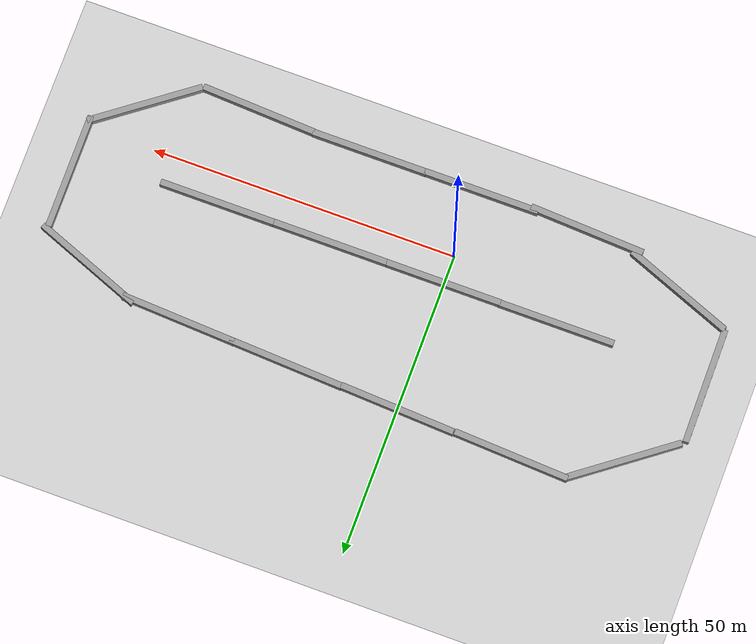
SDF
<sdf version="1.6">
 <world name="default">
  <light name="sun" type="directional">
   <pose>0 0 10 0 -0 0</pose>
   <diffuse>0.8 0.8 0.8 1</diffuse>
   <specular>0.1 0.1 0.1 1</specular>
   <attenuation>
    <range>1000</range>
    <constant>0.9</constant>
    <linear>0.01</linear>
    <quadratic>0.001</quadratic>
   </attenuation>
   <direction>-0.5 0.5 -1</direction>
  </light>
  <model name="ground_plane">
   <static>1</static>
   <link name="link">
    <collision name="collision">
     <geometry><plane><normal>0 0 1</normal><size>100 100</size></plane></geometry>
     <surface><friction><ode><mu>100</mu><mu2>50</mu2></ode></friction></surface>
    </collision>
    <visual name="visual">
     <cast_shadows>0</cast_shadows>
     <geometry><plane><normal>0 0 1</normal><size>100 100</size></plane></geometry>
     <material>
      <script><uri>file://media/materials/scripts/gazebo.material</uri><name>Gazebo/Grey</name></script>
     </material>
    </visual>
   </link>
  </model>
  <gravity>0 0 -9.8</gravity>
  <magnetic_field>6e-06 2.3e-05 -4.2e-05</magnetic_field>
  <atmosphere type="adiabatic"/>
  <physics name="default_physics" default="0" type="ode">
   <max_step_size>0.001</max_step_size>
   <real_time_factor>1</real_time_factor>
   <real_time_update_rate>1000</real_time_update_rate>
  </physics>
  <scene><ambient>0.4 0.4 0.4 1</ambient><background>0.7 0.7 0.7 1</background><shadows>1</shadows></scene>
  <spherical_coordinates>
   <surface_model>EARTH_WGS84</surface_model>
   <latitude_deg>0</latitude_deg>
   <longitude_deg>0</longitude_deg>
   <elevation>0</elevation>
   <heading_deg>0</heading_deg>
  </spherical_coordinates>
  <model name="Wall">
   <link name="link_0">
    <pose>-0 -4e-06 -3e-06 0 -0 0</pose>
    <inertial>
     <mass>51.3684</mass>
     <inertia><ixx>35.9696</ixx><ixy>0</ixy><ixz>0</ixz><iyy>1557.56</iyy><iyz>0</iyz><izz>1530.15</izz></inertia>
    </inertial>
    <visual name="visual">
     <geometry><box><size>18.8799 1 2.72079</size></box></geometry>
     <material>
      <lighting>1</lighting>
      <script><uri>file://media/materials/scripts/gazebo.material</uri><name>Gazebo/Grey</name></script>
      <ambient>0.3 0.3 0.3 1</ambient>
      <diffuse>0.7 0.7 0.7 1</diffuse>
      <specular>0.01 0.01 0.01 1</specular>
      <emissive>0 0 0 1</emissive>
     </material>
    </visual>
    <collision name="collision">
     <geometry><box><size>18.8799 1 2.72079</size></box></geometry>
     <surface>
      <friction>
       <ode><mu>1</mu><mu2>1</mu2><fdir1>0 0 0</fdir1><slip1>0</slip1><slip2>0</slip2></ode>
       <torsional>
        <coefficient>1</coefficient>
        <patch_radius>0</patch_radius>
        <surface_radius>0</surface_radius>
        <use_patch_radius>1</use_patch_radius>
        <ode><slip>0</slip></ode>
       </torsional>
      </friction>
      <bounce><restitution_coefficient>0</restitution_coefficient><threshold>1e+06</threshold></bounce>
      <contact>
       <collide_without_contact>0</collide_without_contact>
       <collide_without_contact_bitmask>1</collide_without_contact_bitmask>
       <collide_bitmask>1</collide_bitmask>
       <ode>
        <soft_cfm>0</soft_cfm>
        <soft_erp>0.2</soft_erp>
        <kp>1e+13</kp>
        <kd>1</kd>
        <max_vel>0.01</max_vel>
        <min_depth>0</min_depth>
       </ode>
       <bullet>
        <split_impulse>1</split_impulse>
        <split_impulse_penetration_threshold>-0.01</split_impulse_penetration_threshold>
        <soft_cfm>0</soft_cfm>
        <soft_erp>0.2</soft_erp>
        <kp>1e+13</kp>
        <kd>1</kd>
       </bullet>
      </contact>
     </surface>
    </collision>
   </link>
   <static>1</static>
   <pose>-0.522523 -11.1241 0 0 -0 0</pose>
  </model>
  <model name="Wall_clone">
   <link name="link_0">
    <pose>-0 -4e-06 -3e-06 0 -0 0</pose>
    <inertial>
     <mass>51.3684</mass>
     <inertia><ixx>35.9696</ixx><ixy>0</ixy><ixz>0</ixz><iyy>1557.56</iyy><iyz>0</iyz><izz>1530.15</izz></inertia>
    </inertial>
    <visual name="visual">
     <geometry><box><size>18.8799 1 2.72079</size></box></geometry>
     <material>
      <lighting>1</lighting>
      <script><uri>file://media/materials/scripts/gazebo.material</uri><name>Gazebo/Grey</name></script>
      <ambient>0.3 0.3 0.3 1</ambient>
      <diffuse>0.7 0.7 0.7 1</diffuse>
      <specular>0.01 0.01 0.01 1</specular>
      <emissive>0 0 0 1</emissive>
     </material>
    </visual>
    <collision name="collision">
     <geometry><box><size>18.8799 1 2.72079</size></box></geometry>
     <surface>
      <friction>
       <ode><mu>1</mu><mu2>1</mu2><fdir1>0 0 0</fdir1><slip1>0</slip1><slip2>0</slip2></ode>
       <torsional>
        <coefficient>1</coefficient>
        <patch_radius>0</patch_radius>
        <surface_radius>0</surface_radius>
        <use_patch_radius>1</use_patch_radius>
        <ode><slip>0</slip></ode>
       </torsional>
      </friction>
      <bounce><restitution_coefficient>0</restitution_coefficient><threshold>1e+06</threshold></bounce>
      <contact>
       <collide_without_contact>0</collide_without_contact>
       <collide_without_contact_bitmask>1</collide_without_contact_bitmask>
       <collide_bitmask>1</collide_bitmask>
       <ode>
        <soft_cfm>0</soft_cfm>
        <soft_erp>0.2</soft_erp>
        <kp>1e+13</kp>
        <kd>1</kd>
        <max_vel>0.01</max_vel>
        <min_depth>0</min_depth>
       </ode>
       <bullet>
        <split_impulse>1</split_impulse>
        <split_impulse_penetration_threshold>-0.01</split_impulse_penetration_threshold>
        <soft_cfm>0</soft_cfm>
        <soft_erp>0.2</soft_erp>
        <kp>1e+13</kp>
        <kd>1</kd>
       </bullet>
      </contact>
     </surface>
    </collision>
   </link>
   <static>1</static>
   <pose>0.031843 4.67742 0 0 -0 0</pose>
  </model>
  <model name="Wall_clone_0">
   <link name="link_0">
    <pose>-0 -4e-06 -3e-06 0 -0 0</pose>
    <inertial>
     <mass>51.3684</mass>
     <inertia><ixx>35.9696</ixx><ixy>0</ixy><ixz>0</ixz><iyy>1557.56</iyy><iyz>0</iyz><izz>1530.15</izz></inertia>
    </inertial>
    <visual name="visual">
     <geometry><box><size>18.8799 1 2.72079</size></box></geometry>
     <material>
      <lighting>1</lighting>
      <script><uri>file://media/materials/scripts/gazebo.material</uri><name>Gazebo/Grey</name></script>
      <ambient>0.3 0.3 0.3 1</ambient>
      <diffuse>0.7 0.7 0.7 1</diffuse>
      <specular>0.01 0.01 0.01 1</specular>
      <emissive>0 0 0 1</emissive>
     </material>
    </visual>
    <collision name="collision">
     <geometry><box><size>18.8799 1 2.72079</size></box></geometry>
     <surface>
      <friction>
       <ode><mu>1</mu><mu2>1</mu2><fdir1>0 0 0</fdir1><slip1>0</slip1><slip2>0</slip2></ode>
       <torsional>
        <coefficient>1</coefficient>
        <patch_radius>0</patch_radius>
        <surface_radius>0</surface_radius>
        <use_patch_radius>1</use_patch_radius>
        <ode><slip>0</slip></ode>
       </torsional>
      </friction>
      <bounce><restitution_coefficient>0</restitution_coefficient><threshold>1e+06</threshold></bounce>
      <contact>
       <collide_without_contact>0</collide_without_contact>
       <collide_without_contact_bitmask>1</collide_without_contact_bitmask>
       <collide_bitmask>1</collide_bitmask>
       <ode>
        <soft_cfm>0</soft_cfm>
        <soft_erp>0.2</soft_erp>
        <kp>1e+13</kp>
        <kd>1</kd>
        <max_vel>0.01</max_vel>
        <min_depth>0</min_depth>
       </ode>
       <bullet>
        <split_impulse>1</split_impulse>
        <split_impulse_penetration_threshold>-0.01</split_impulse_penetration_threshold>
        <soft_cfm>0</soft_cfm>
        <soft_erp>0.2</soft_erp>
        <kp>1e+13</kp>
        <kd>1</kd>
       </bullet>
      </contact>
     </surface>
    </collision>
   </link>
   <static>1</static>
   <pose>18.8535 4.66887 0 0 -0 0</pose>
  </model>
  <model name="Wall_clone_1">
   <link name="link_0">
    <pose>-0 -4e-06 -3e-06 0 -0 0</pose>
    <inertial>
     <mass>51.3684</mass>
     <inertia><ixx>35.9696</ixx><ixy>0</ixy><ixz>0</ixz><iyy>1557.56</iyy><iyz>0</iyz><izz>1530.15</izz></inertia>
    </inertial>
    <visual name="visual">
     <geometry><box><size>18.8799 1 2.72079</size></box></geometry>
     <material>
      <lighting>1</lighting>
      <script><uri>file://media/materials/scripts/gazebo.material</uri><name>Gazebo/Grey</name></script>
      <ambient>0.3 0.3 0.3 1</ambient>
      <diffuse>0.7 0.7 0.7 1</diffuse>
      <specular>0.01 0.01 0.01 1</specular>
      <emissive>0 0 0 1</emissive>
     </material>
    </visual>
    <collision name="collision">
     <geometry><box><size>18.8799 1 2.72079</size></box></geometry>
     <surface>
      <friction>
       <ode><mu>1</mu><mu2>1</mu2><fdir1>0 0 0</fdir1><slip1>0</slip1><slip2>0</slip2></ode>
       <torsional>
        <coefficient>1</coefficient>
        <patch_radius>0</patch_radius>
        <surface_radius>0</surface_radius>
        <use_patch_radius>1</use_patch_radius>
        <ode><slip>0</slip></ode>
       </torsional>
      </friction>
      <bounce><restitution_coefficient>0</restitution_coefficient><threshold>1e+06</threshold></bounce>
      <contact>
       <collide_without_contact>0</collide_without_contact>
       <collide_without_contact_bitmask>1</collide_without_contact_bitmask>
       <collide_bitmask>1</collide_bitmask>
       <ode>
        <soft_cfm>0</soft_cfm>
        <soft_erp>0.2</soft_erp>
        <kp>1e+13</kp>
        <kd>1</kd>
        <max_vel>0.01</max_vel>
        <min_depth>0</min_depth>
       </ode>
       <bullet>
        <split_impulse>1</split_impulse>
        <split_impulse_penetration_threshold>-0.01</split_impulse_penetration_threshold>
        <soft_cfm>0</soft_cfm>
        <soft_erp>0.2</soft_erp>
        <kp>1e+13</kp>
        <kd>1</kd>
       </bullet>
      </contact>
     </surface>
    </collision>
   </link>
   <static>1</static>
   <pose>18.0924 -11.0897 0 0 -0 0</pose>
  </model>
  <model name="Wall_clone_2">
   <link name="link_0">
    <pose>-0 -4e-06 -3e-06 0 -0 0</pose>
    <inertial>
     <mass>51.3684</mass>
     <inertia><ixx>35.9696</ixx><ixy>0</ixy><ixz>0</ixz><iyy>1557.56</iyy><iyz>0</iyz><izz>1530.15</izz></inertia>
    </inertial>
    <visual name="visual">
     <geometry><box><size>18.8799 1 2.72079</size></box></geometry>
     <material>
      <lighting>1</lighting>
      <script><uri>file://media/materials/scripts/gazebo.material</uri><name>Gazebo/Grey</name></script>
      <ambient>0.3 0.3 0.3 1</ambient>
      <diffuse>0.7 0.7 0.7 1</diffuse>
      <specular>0.01 0.01 0.01 1</specular>
      <emissive>0 0 0 1</emissive>
     </material>
    </visual>
    <collision name="collision">
     <geometry><box><size>18.8799 1 2.72079</size></box></geometry>
     <surface>
      <friction>
       <ode><mu>1</mu><mu2>1</mu2><fdir1>0 0 0</fdir1><slip1>0</slip1><slip2>0</slip2></ode>
       <torsional>
        <coefficient>1</coefficient>
        <patch_radius>0</patch_radius>
        <surface_radius>0</surface_radius>
        <use_patch_radius>1</use_patch_radius>
        <ode><slip>0</slip></ode>
       </torsional>
      </friction>
      <bounce><restitution_coefficient>0</restitution_coefficient><threshold>1e+06</threshold></bounce>
      <contact>
       <collide_without_contact>0</collide_without_contact>
       <collide_without_contact_bitmask>1</collide_without_contact_bitmask>
       <collide_bitmask>1</collide_bitmask>
       <ode>
        <soft_cfm>0</soft_cfm>
        <soft_erp>0.2</soft_erp>
        <kp>1e+13</kp>
        <kd>1</kd>
        <max_vel>0.01</max_vel>
        <min_depth>0</min_depth>
       </ode>
       <bullet>
        <split_impulse>1</split_impulse>
        <split_impulse_penetration_threshold>-0.01</split_impulse_penetration_threshold>
        <soft_cfm>0</soft_cfm>
        <soft_erp>0.2</soft_erp>
        <kp>1e+13</kp>
        <kd>1</kd>
       </bullet>
      </contact>
     </surface>
    </collision>
   </link>
   <static>1</static>
   <pose>37.6437 4.68164 0 0 -0 0</pose>
  </model>
  <model name="Wall_clone_3">
   <link name="link_0">
    <pose>-0 -4e-06 -3e-06 0 -0 0</pose>
    <inertial>
     <mass>51.3684</mass>
     <inertia><ixx>35.9696</ixx><ixy>0</ixy><ixz>0</ixz><iyy>1557.56</iyy><iyz>0</iyz><izz>1530.15</izz></inertia>
    </inertial>
    <visual name="visual">
     <geometry><box><size>18.8799 1 2.72079</size></box></geometry>
     <material>
      <lighting>1</lighting>
      <script><uri>file://media/materials/scripts/gazebo.material</uri><name>Gazebo/Grey</name></script>
      <ambient>0.3 0.3 0.3 1</ambient>
      <diffuse>0.7 0.7 0.7 1</diffuse>
      <specular>0.01 0.01 0.01 1</specular>
      <emissive>0 0 0 1</emissive>
     </material>
    </visual>
    <collision name="collision">
     <geometry><box><size>18.8799 1 2.72079</size></box></geometry>
     <surface>
      <friction>
       <ode><mu>1</mu><mu2>1</mu2><fdir1>0 0 0</fdir1><slip1>0</slip1><slip2>0</slip2></ode>
       <torsional>
        <coefficient>1</coefficient>
        <patch_radius>0</patch_radius>
        <surface_radius>0</surface_radius>
        <use_patch_radius>1</use_patch_radius>
        <ode><slip>0</slip></ode>
       </torsional>
      </friction>
      <bounce><restitution_coefficient>0</restitution_coefficient><threshold>1e+06</threshold></bounce>
      <contact>
       <collide_without_contact>0</collide_without_contact>
       <collide_without_contact_bitmask>1</collide_without_contact_bitmask>
       <collide_bitmask>1</collide_bitmask>
       <ode>
        <soft_cfm>0</soft_cfm>
        <soft_erp>0.2</soft_erp>
        <kp>1e+13</kp>
        <kd>1</kd>
        <max_vel>0.01</max_vel>
        <min_depth>0</min_depth>
       </ode>
       <bullet>
        <split_impulse>1</split_impulse>
        <split_impulse_penetration_threshold>-0.01</split_impulse_penetration_threshold>
        <soft_cfm>0</soft_cfm>
        <soft_erp>0.2</soft_erp>
        <kp>1e+13</kp>
        <kd>1</kd>
       </bullet>
      </contact>
     </surface>
    </collision>
   </link>
   <static>1</static>
   <pose>-18.6459 4.72571 0 0 -0 0</pose>
  </model>
  <model name="Wall_clone_4_clone">
   <link name="link_0">
    <pose>-0 -4e-06 -3e-06 0 -0 0</pose>
    <inertial>
     <mass>51.3684</mass>
     <inertia><ixx>35.9696</ixx><ixy>0</ixy><ixz>0</ixz><iyy>1557.56</iyy><iyz>0</iyz><izz>1530.15</izz></inertia>
    </inertial>
    <visual name="visual">
     <geometry><box><size>18.8799 1 2.72079</size></box></geometry>
     <material>
      <lighting>1</lighting>
      <script><uri>file://media/materials/scripts/gazebo.material</uri><name>Gazebo/Grey</name></script>
      <ambient>0.3 0.3 0.3 1</ambient>
      <diffuse>0.7 0.7 0.7 1</diffuse>
      <specular>0.01 0.01 0.01 1</specular>
      <emissive>0 0 0 1</emissive>
     </material>
    </visual>
    <collision name="collision">
     <geometry><box><size>18.8799 1 2.72079</size></box></geometry>
     <surface>
      <friction>
       <ode><mu>1</mu><mu2>1</mu2><fdir1>0 0 0</fdir1><slip1>0</slip1><slip2>0</slip2></ode>
       <torsional>
        <coefficient>1</coefficient>
        <patch_radius>0</patch_radius>
        <surface_radius>0</surface_radius>
        <use_patch_radius>1</use_patch_radius>
        <ode><slip>0</slip></ode>
       </torsional>
      </friction>
      <bounce><restitution_coefficient>0</restitution_coefficient><threshold>1e+06</threshold></bounce>
      <contact>
       <collide_without_contact>0</collide_without_contact>
       <collide_without_contact_bitmask>1</collide_without_contact_bitmask>
       <collide_bitmask>1</collide_bitmask>
       <ode>
        <soft_cfm>0</soft_cfm>
        <soft_erp>0.2</soft_erp>
        <kp>1e+13</kp>
        <kd>1</kd>
        <max_vel>0.01</max_vel>
        <min_depth>0</min_depth>
       </ode>
       <bullet>
        <split_impulse>1</split_impulse>
        <split_impulse_penetration_threshold>-0.01</split_impulse_penetration_threshold>
        <soft_cfm>0</soft_cfm>
        <soft_erp>0.2</soft_erp>
        <kp>1e+13</kp>
        <kd>1</kd>
       </bullet>
      </contact>
     </surface>
    </collision>
   </link>
   <static>1</static>
   <pose>-34.7193 -6.67829 0 0 0 -0.369209</pose>
  </model>
  <model name="Wall_clone_4_clone_0">
   <link name="link_0">
    <pose>-0 -4e-06 -3e-06 0 -0 0</pose>
    <inertial>
     <mass>51.3684</mass>
     <inertia><ixx>35.9696</ixx><ixy>0</ixy><ixz>0</ixz><iyy>1557.56</iyy><iyz>0</iyz><izz>1530.15</izz></inertia>
    </inertial>
    <visual name="visual">
     <geometry><box><size>18.8799 1 2.72079</size></box></geometry>
     <material>
      <lighting>1</lighting>
      <script><uri>file://media/materials/scripts/gazebo.material</uri><name>Gazebo/Grey</name></script>
      <ambient>0.3 0.3 0.3 1</ambient>
      <diffuse>0.7 0.7 0.7 1</diffuse>
      <specular>0.01 0.01 0.01 1</specular>
      <emissive>0 0 0 1</emissive>
     </material>
    </visual>
    <collision name="collision">
     <geometry><box><size>18.8799 1 2.72079</size></box></geometry>
     <surface>
      <friction>
       <ode><mu>1</mu><mu2>1</mu2><fdir1>0 0 0</fdir1><slip1>0</slip1><slip2>0</slip2></ode>
       <torsional>
        <coefficient>1</coefficient>
        <patch_radius>0</patch_radius>
        <surface_radius>0</surface_radius>
        <use_patch_radius>1</use_patch_radius>
        <ode><slip>0</slip></ode>
       </torsional>
      </friction>
      <bounce><restitution_coefficient>0</restitution_coefficient><threshold>1e+06</threshold></bounce>
      <contact>
       <collide_without_contact>0</collide_without_contact>
       <collide_without_contact_bitmask>1</collide_without_contact_bitmask>
       <collide_bitmask>1</collide_bitmask>
       <ode>
        <soft_cfm>0</soft_cfm>
        <soft_erp>0.2</soft_erp>
        <kp>1e+13</kp>
        <kd>1</kd>
        <max_vel>0.01</max_vel>
        <min_depth>0</min_depth>
       </ode>
       <bullet>
        <split_impulse>1</split_impulse>
        <split_impulse_penetration_threshold>-0.01</split_impulse_penetration_threshold>
        <soft_cfm>0</soft_cfm>
        <soft_erp>0.2</soft_erp>
        <kp>1e+13</kp>
        <kd>1</kd>
       </bullet>
      </contact>
     </surface>
    </collision>
   </link>
   <static>1</static>
   <pose>-18.1084 -10.9954 0 0 0 -0.04997</pose>
  </model>
  <model name="Wall_clone_4_clone_1_clone_clone">
   <link name="link_0">
    <pose>-0 -4e-06 -3e-06 0 -0 0</pose>
    <inertial>
     <mass>51.3684</mass>
     <inertia><ixx>35.9696</ixx><ixy>0</ixy><ixz>0</ixz><iyy>1557.56</iyy><iyz>0</iyz><izz>1530.15</izz></inertia>
    </inertial>
    <visual name="visual">
     <geometry><box><size>18.8799 1 2.72079</size></box></geometry>
     <material>
      <lighting>1</lighting>
      <script><uri>file://media/materials/scripts/gazebo.material</uri><name>Gazebo/Grey</name></script>
      <ambient>0.3 0.3 0.3 1</ambient>
      <diffuse>0.7 0.7 0.7 1</diffuse>
      <specular>0.01 0.01 0.01 1</specular>
      <emissive>0 0 0 1</emissive>
     </material>
    </visual>
    <collision name="collision">
     <geometry><box><size>18.8799 1 2.72079</size></box></geometry>
     <surface>
      <friction>
       <ode><mu>1</mu><mu2>1</mu2><fdir1>0 0 0</fdir1><slip1>0</slip1><slip2>0</slip2></ode>
       <torsional>
        <coefficient>1</coefficient>
        <patch_radius>0</patch_radius>
        <surface_radius>0</surface_radius>
        <use_patch_radius>1</use_patch_radius>
        <ode><slip>0</slip></ode>
       </torsional>
      </friction>
      <bounce><restitution_coefficient>0</restitution_coefficient><threshold>1e+06</threshold></bounce>
      <contact>
       <collide_without_contact>0</collide_without_contact>
       <collide_without_contact_bitmask>1</collide_without_contact_bitmask>
       <collide_bitmask>1</collide_bitmask>
       <ode>
        <soft_cfm>0</soft_cfm>
        <soft_erp>0.2</soft_erp>
        <kp>1e+13</kp>
        <kd>1</kd>
        <max_vel>0.01</max_vel>
        <min_depth>0</min_depth>
       </ode>
       <bullet>
        <split_impulse>1</split_impulse>
        <split_impulse_penetration_threshold>-0.01</split_impulse_penetration_threshold>
        <soft_cfm>0</soft_cfm>
        <soft_erp>0.2</soft_erp>
        <kp>1e+13</kp>
        <kd>1</kd>
       </bullet>
      </contact>
     </surface>
    </collision>
   </link>
   <static>1</static>
   <pose>-43.6515 6.20662 0 0 0 -1.56615</pose>
  </model>
  <model name="Wall_clone_4_clone_1_clone_0">
   <link name="link_0">
    <pose>-0 -4e-06 -3e-06 0 -0 0</pose>
    <inertial>
     <mass>51.3684</mass>
     <inertia><ixx>35.9696</ixx><ixy>0</ixy><ixz>0</ixz><iyy>1557.56</iyy><iyz>0</iyz><izz>1530.15</izz></inertia>
    </inertial>
    <visual name="visual">
     <geometry><box><size>18.8799 1 2.72079</size></box></geometry>
     <material>
      <lighting>1</lighting>
      <script><uri>file://media/materials/scripts/gazebo.material</uri><name>Gazebo/Grey</name></script>
      <ambient>0.3 0.3 0.3 1</ambient>
      <diffuse>0.7 0.7 0.7 1</diffuse>
      <specular>0.01 0.01 0.01 1</specular>
      <emissive>0 0 0 1</emissive>
     </material>
    </visual>
    <collision name="collision">
     <geometry><box><size>18.8799 1 2.72079</size></box></geometry>
     <surface>
      <friction>
       <ode><mu>1</mu><mu2>1</mu2><fdir1>0 0 0</fdir1><slip1>0</slip1><slip2>0</slip2></ode>
       <torsional>
        <coefficient>1</coefficient>
        <patch_radius>0</patch_radius>
        <surface_radius>0</surface_radius>
        <use_patch_radius>1</use_patch_radius>
        <ode><slip>0</slip></ode>
       </torsional>
      </friction>
      <bounce><restitution_coefficient>0</restitution_coefficient><threshold>1e+06</threshold></bounce>
      <contact>
       <collide_without_contact>0</collide_without_contact>
       <collide_without_contact_bitmask>1</collide_without_contact_bitmask>
       <collide_bitmask>1</collide_bitmask>
       <ode>
        <soft_cfm>0</soft_cfm>
        <soft_erp>0.2</soft_erp>
        <kp>1e+13</kp>
        <kd>1</kd>
        <max_vel>0.01</max_vel>
        <min_depth>0</min_depth>
       </ode>
       <bullet>
        <split_impulse>1</split_impulse>
        <split_impulse_penetration_threshold>-0.01</split_impulse_penetration_threshold>
        <soft_cfm>0</soft_cfm>
        <soft_erp>0.2</soft_erp>
        <kp>1e+13</kp>
        <kd>1</kd>
       </bullet>
      </contact>
     </surface>
    </collision>
   </link>
   <static>1</static>
   <pose>-35.6567 21.6087 0 0 -0 0.641927</pose>
  </model>
  <model name="Wall_clone_4_clone_0_clone">
   <link name="link_0">
    <pose>-0 -4e-06 -3e-06 0 -0 0</pose>
    <inertial>
     <mass>51.3684</mass>
     <inertia><ixx>35.9696</ixx><ixy>0</ixy><ixz>0</ixz><iyy>1557.56</iyy><iyz>0</iyz><izz>1530.15</izz></inertia>
    </inertial>
    <visual name="visual">
     <geometry><box><size>18.8799 1 2.72079</size></box></geometry>
     <material>
      <lighting>1</lighting>
      <script><uri>file://media/materials/scripts/gazebo.material</uri><name>Gazebo/Grey</name></script>
      <ambient>0.3 0.3 0.3 1</ambient>
      <diffuse>0.7 0.7 0.7 1</diffuse>
      <specular>0.01 0.01 0.01 1</specular>
      <emissive>0 0 0 1</emissive>
     </material>
    </visual>
    <collision name="collision">
     <geometry><box><size>18.8799 1 2.72079</size></box></geometry>
     <surface>
      <friction>
       <ode><mu>1</mu><mu2>1</mu2><fdir1>0 0 0</fdir1><slip1>0</slip1><slip2>0</slip2></ode>
       <torsional>
        <coefficient>1</coefficient>
        <patch_radius>0</patch_radius>
        <surface_radius>0</surface_radius>
        <use_patch_radius>1</use_patch_radius>
        <ode><slip>0</slip></ode>
       </torsional>
      </friction>
      <bounce><restitution_coefficient>0</restitution_coefficient><threshold>1e+06</threshold></bounce>
      <contact>
       <collide_without_contact>0</collide_without_contact>
       <collide_without_contact_bitmask>1</collide_without_contact_bitmask>
       <collide_bitmask>1</collide_bitmask>
       <ode>
        <soft_cfm>0</soft_cfm>
        <soft_erp>0.2</soft_erp>
        <kp>1e+13</kp>
        <kd>1</kd>
        <max_vel>0.01</max_vel>
        <min_depth>0</min_depth>
       </ode>
       <bullet>
        <split_impulse>1</split_impulse>
        <split_impulse_penetration_threshold>-0.01</split_impulse_penetration_threshold>
        <soft_cfm>0</soft_cfm>
        <soft_erp>0.2</soft_erp>
        <kp>1e+13</kp>
        <kd>1</kd>
       </bullet>
      </contact>
     </surface>
    </collision>
   </link>
   <static>1</static>
   <pose>-19.0957 26.8056 0 0 0 -0.04997</pose>
  </model>
  <model name="Wall_clone_4_clone_0_clone_clone">
   <link name="link_0">
    <pose>-0 -4e-06 -3e-06 0 -0 0</pose>
    <inertial>
     <mass>51.3684</mass>
     <inertia><ixx>35.9696</ixx><ixy>0</ixy><ixz>0</ixz><iyy>1557.56</iyy><iyz>0</iyz><izz>1530.15</izz></inertia>
    </inertial>
    <visual name="visual">
     <geometry><box><size>18.8799 1 2.72079</size></box></geometry>
     <material>
      <lighting>1</lighting>
      <script><uri>file://media/materials/scripts/gazebo.material</uri><name>Gazebo/Grey</name></script>
      <ambient>0.3 0.3 0.3 1</ambient>
      <diffuse>0.7 0.7 0.7 1</diffuse>
      <specular>0.01 0.01 0.01 1</specular>
      <emissive>0 0 0 1</emissive>
     </material>
    </visual>
    <collision name="collision">
     <geometry><box><size>18.8799 1 2.72079</size></box></geometry>
     <surface>
      <friction>
       <ode><mu>1</mu><mu2>1</mu2><fdir1>0 0 0</fdir1><slip1>0</slip1><slip2>0</slip2></ode>
       <torsional>
        <coefficient>1</coefficient>
        <patch_radius>0</patch_radius>
        <surface_radius>0</surface_radius>
        <use_patch_radius>1</use_patch_radius>
        <ode><slip>0</slip></ode>
       </torsional>
      </friction>
      <bounce><restitution_coefficient>0</restitution_coefficient><threshold>1e+06</threshold></bounce>
      <contact>
       <collide_without_contact>0</collide_without_contact>
       <collide_without_contact_bitmask>1</collide_without_contact_bitmask>
       <collide_bitmask>1</collide_bitmask>
       <ode>
        <soft_cfm>0</soft_cfm>
        <soft_erp>0.2</soft_erp>
        <kp>1e+13</kp>
        <kd>1</kd>
        <max_vel>0.01</max_vel>
        <min_depth>0</min_depth>
       </ode>
       <bullet>
        <split_impulse>1</split_impulse>
        <split_impulse_penetration_threshold>-0.01</split_impulse_penetration_threshold>
        <soft_cfm>0</soft_cfm>
        <soft_erp>0.2</soft_erp>
        <kp>1e+13</kp>
        <kd>1</kd>
       </bullet>
      </contact>
     </surface>
    </collision>
   </link>
   <static>1</static>
   <pose>-0.084187 25.9603 0 0 0 -0.04997</pose>
  </model>
  <model name="Wall_clone_4_clone_0_clone_clone_0">
   <link name="link_0">
    <pose>-0 -4e-06 -3e-06 0 -0 0</pose>
    <inertial>
     <mass>51.3684</mass>
     <inertia><ixx>35.9696</ixx><ixy>0</ixy><ixz>0</ixz><iyy>1557.56</iyy><iyz>0</iyz><izz>1530.15</izz></inertia>
    </inertial>
    <visual name="visual">
     <geometry><box><size>18.8799 1 2.72079</size></box></geometry>
     <material>
      <lighting>1</lighting>
      <script><uri>file://media/materials/scripts/gazebo.material</uri><name>Gazebo/Grey</name></script>
      <ambient>0.3 0.3 0.3 1</ambient>
      <diffuse>0.7 0.7 0.7 1</diffuse>
      <specular>0.01 0.01 0.01 1</specular>
      <emissive>0 0 0 1</emissive>
     </material>
    </visual>
    <collision name="collision">
     <geometry><box><size>18.8799 1 2.72079</size></box></geometry>
     <surface>
      <friction>
       <ode><mu>1</mu><mu2>1</mu2><fdir1>0 0 0</fdir1><slip1>0</slip1><slip2>0</slip2></ode>
       <torsional>
        <coefficient>1</coefficient>
        <patch_radius>0</patch_radius>
        <surface_radius>0</surface_radius>
        <use_patch_radius>1</use_patch_radius>
        <ode><slip>0</slip></ode>
       </torsional>
      </friction>
      <bounce><restitution_coefficient>0</restitution_coefficient><threshold>1e+06</threshold></bounce>
      <contact>
       <collide_without_contact>0</collide_without_contact>
       <collide_without_contact_bitmask>1</collide_without_contact_bitmask>
       <collide_bitmask>1</collide_bitmask>
       <ode>
        <soft_cfm>0</soft_cfm>
        <soft_erp>0.2</soft_erp>
        <kp>1e+13</kp>
        <kd>1</kd>
        <max_vel>0.01</max_vel>
        <min_depth>0</min_depth>
       </ode>
       <bullet>
        <split_impulse>1</split_impulse>
        <split_impulse_penetration_threshold>-0.01</split_impulse_penetration_threshold>
        <soft_cfm>0</soft_cfm>
        <soft_erp>0.2</soft_erp>
        <kp>1e+13</kp>
        <kd>1</kd>
       </bullet>
      </contact>
     </surface>
    </collision>
   </link>
   <static>1</static>
   <pose>18.6437 25.1033 0 0 0 -0.04997</pose>
  </model>
  <model name="Wall_clone_4_clone_0_clone_clone_1">
   <link name="link_0">
    <pose>-0 -4e-06 -3e-06 0 -0 0</pose>
    <inertial>
     <mass>51.3684</mass>
     <inertia><ixx>35.9696</ixx><ixy>0</ixy><ixz>0</ixz><iyy>1557.56</iyy><iyz>0</iyz><izz>1530.15</izz></inertia>
    </inertial>
    <visual name="visual">
     <geometry><box><size>18.8799 1 2.72079</size></box></geometry>
     <material>
      <lighting>1</lighting>
      <script><uri>file://media/materials/scripts/gazebo.material</uri><name>Gazebo/Grey</name></script>
      <ambient>0.3 0.3 0.3 1</ambient>
      <diffuse>0.7 0.7 0.7 1</diffuse>
      <specular>0.01 0.01 0.01 1</specular>
      <emissive>0 0 0 1</emissive>
     </material>
    </visual>
    <collision name="collision">
     <geometry><box><size>18.8799 1 2.72079</size></box></geometry>
     <surface>
      <friction>
       <ode><mu>1</mu><mu2>1</mu2><fdir1>0 0 0</fdir1><slip1>0</slip1><slip2>0</slip2></ode>
       <torsional>
        <coefficient>1</coefficient>
        <patch_radius>0</patch_radius>
        <surface_radius>0</surface_radius>
        <use_patch_radius>1</use_patch_radius>
        <ode><slip>0</slip></ode>
       </torsional>
      </friction>
      <bounce><restitution_coefficient>0</restitution_coefficient><threshold>1e+06</threshold></bounce>
      <contact>
       <collide_without_contact>0</collide_without_contact>
       <collide_without_contact_bitmask>1</collide_without_contact_bitmask>
       <collide_bitmask>1</collide_bitmask>
       <ode>
        <soft_cfm>0</soft_cfm>
        <soft_erp>0.2</soft_erp>
        <kp>1e+13</kp>
        <kd>1</kd>
        <max_vel>0.01</max_vel>
        <min_depth>0</min_depth>
       </ode>
       <bullet>
        <split_impulse>1</split_impulse>
        <split_impulse_penetration_threshold>-0.01</split_impulse_penetration_threshold>
        <soft_cfm>0</soft_cfm>
        <soft_erp>0.2</soft_erp>
        <kp>1e+13</kp>
        <kd>1</kd>
       </bullet>
      </contact>
     </surface>
    </collision>
   </link>
   <static>1</static>
   <pose>36.7896 24.2178 0 0 0 -0.04997</pose>
  </model>
  <model name="Wall_clone_4_clone_0_clone_clone_2">
   <link name="link_0">
    <pose>-0 -4e-06 -3e-06 0 -0 0</pose>
    <inertial>
     <mass>51.3684</mass>
     <inertia><ixx>35.9696</ixx><ixy>0</ixy><ixz>0</ixz><iyy>1557.56</iyy><iyz>0</iyz><izz>1530.15</izz></inertia>
    </inertial>
    <visual name="visual">
     <geometry><box><size>18.8799 1 2.72079</size></box></geometry>
     <material>
      <lighting>1</lighting>
      <script><uri>file://media/materials/scripts/gazebo.material</uri><name>Gazebo/Grey</name></script>
      <ambient>0.3 0.3 0.3 1</ambient>
      <diffuse>0.7 0.7 0.7 1</diffuse>
      <specular>0.01 0.01 0.01 1</specular>
      <emissive>0 0 0 1</emissive>
     </material>
    </visual>
    <collision name="collision">
     <geometry><box><size>18.8799 1 2.72079</size></box></geometry>
     <surface>
      <friction>
       <ode><mu>1</mu><mu2>1</mu2><fdir1>0 0 0</fdir1><slip1>0</slip1><slip2>0</slip2></ode>
       <torsional>
        <coefficient>1</coefficient>
        <patch_radius>0</patch_radius>
        <surface_radius>0</surface_radius>
        <use_patch_radius>1</use_patch_radius>
        <ode><slip>0</slip></ode>
       </torsional>
      </friction>
      <bounce><restitution_coefficient>0</restitution_coefficient><threshold>1e+06</threshold></bounce>
      <contact>
       <collide_without_contact>0</collide_without_contact>
       <collide_without_contact_bitmask>1</collide_without_contact_bitmask>
       <collide_bitmask>1</collide_bitmask>
       <ode>
        <soft_cfm>0</soft_cfm>
        <soft_erp>0.2</soft_erp>
        <kp>1e+13</kp>
        <kd>1</kd>
        <max_vel>0.01</max_vel>
        <min_depth>0</min_depth>
       </ode>
       <bullet>
        <split_impulse>1</split_impulse>
        <split_impulse_penetration_threshold>-0.01</split_impulse_penetration_threshold>
        <soft_cfm>0</soft_cfm>
        <soft_erp>0.2</soft_erp>
        <kp>1e+13</kp>
        <kd>1</kd>
       </bullet>
      </contact>
     </surface>
    </collision>
   </link>
   <static>1</static>
   <pose>36.7928 -11.6161 0 0 0 -0.04997</pose>
  </model>
  <model name="Wall_clone_4_clone_1_clone_0_clone">
   <link name="link_0">
    <pose>-0 -4e-06 -3e-06 0 -0 0</pose>
    <inertial>
     <mass>51.3684</mass>
     <inertia><ixx>35.9696</ixx><ixy>0</ixy><ixz>0</ixz><iyy>1557.56</iyy><iyz>0</iyz><izz>1530.15</izz></inertia>
    </inertial>
    <visual name="visual">
     <geometry><box><size>18.8799 1 2.72079</size></box></geometry>
     <material>
      <lighting>1</lighting>
      <script><uri>file://media/materials/scripts/gazebo.material</uri><name>Gazebo/Grey</name></script>
      <ambient>0.3 0.3 0.3 1</ambient>
      <diffuse>0.7 0.7 0.7 1</diffuse>
      <specular>0.01 0.01 0.01 1</specular>
      <emissive>0 0 0 1</emissive>
     </material>
    </visual>
    <collision name="collision">
     <geometry><box><size>18.8799 1 2.72079</size></box></geometry>
     <surface>
      <friction>
       <ode><mu>1</mu><mu2>1</mu2><fdir1>0 0 0</fdir1><slip1>0</slip1><slip2>0</slip2></ode>
       <torsional>
        <coefficient>1</coefficient>
        <patch_radius>0</patch_radius>
        <surface_radius>0</surface_radius>
        <use_patch_radius>1</use_patch_radius>
        <ode><slip>0</slip></ode>
       </torsional>
      </friction>
      <bounce><restitution_coefficient>0</restitution_coefficient><threshold>1e+06</threshold></bounce>
      <contact>
       <collide_without_contact>0</collide_without_contact>
       <collide_without_contact_bitmask>1</collide_without_contact_bitmask>
       <collide_bitmask>1</collide_bitmask>
       <ode>
        <soft_cfm>0</soft_cfm>
        <soft_erp>0.2</soft_erp>
        <kp>1e+13</kp>
        <kd>1</kd>
        <max_vel>0.01</max_vel>
        <min_depth>0</min_depth>
       </ode>
       <bullet>
        <split_impulse>1</split_impulse>
        <split_impulse_penetration_threshold>-0.01</split_impulse_penetration_threshold>
        <soft_cfm>0</soft_cfm>
        <soft_erp>0.2</soft_erp>
        <kp>1e+13</kp>
        <kd>1</kd>
       </bullet>
      </contact>
     </surface>
    </collision>
   </link>
   <static>1</static>
   <pose>53.8901 -6.31504 0 0 -0 0.641927</pose>
  </model>
  <model name="Wall_clone_4_clone_1_clone_clone_clone">
   <link name="link_0">
    <pose>-0 -4e-06 -3e-06 0 -0 0</pose>
    <inertial>
     <mass>51.3684</mass>
     <inertia><ixx>35.9696</ixx><ixy>0</ixy><ixz>0</ixz><iyy>1557.56</iyy><iyz>0</iyz><izz>1530.15</izz></inertia>
    </inertial>
    <visual name="visual">
     <geometry><box><size>18.8799 1 2.72079</size></box></geometry>
     <material>
      <lighting>1</lighting>
      <script><uri>file://media/materials/scripts/gazebo.material</uri><name>Gazebo/Grey</name></script>
      <ambient>0.3 0.3 0.3 1</ambient>
      <diffuse>0.7 0.7 0.7 1</diffuse>
      <specular>0.01 0.01 0.01 1</specular>
      <emissive>0 0 0 1</emissive>
     </material>
    </visual>
    <collision name="collision">
     <geometry><box><size>18.8799 1 2.72079</size></box></geometry>
     <surface>
      <friction>
       <ode><mu>1</mu><mu2>1</mu2><fdir1>0 0 0</fdir1><slip1>0</slip1><slip2>0</slip2></ode>
       <torsional>
        <coefficient>1</coefficient>
        <patch_radius>0</patch_radius>
        <surface_radius>0</surface_radius>
        <use_patch_radius>1</use_patch_radius>
        <ode><slip>0</slip></ode>
       </torsional>
      </friction>
      <bounce><restitution_coefficient>0</restitution_coefficient><threshold>1e+06</threshold></bounce>
      <contact>
       <collide_without_contact>0</collide_without_contact>
       <collide_without_contact_bitmask>1</collide_without_contact_bitmask>
       <collide_bitmask>1</collide_bitmask>
       <ode>
        <soft_cfm>0</soft_cfm>
        <soft_erp>0.2</soft_erp>
        <kp>1e+13</kp>
        <kd>1</kd>
        <max_vel>0.01</max_vel>
        <min_depth>0</min_depth>
       </ode>
       <bullet>
        <split_impulse>1</split_impulse>
        <split_impulse_penetration_threshold>-0.01</split_impulse_penetration_threshold>
        <soft_cfm>0</soft_cfm>
        <soft_erp>0.2</soft_erp>
        <kp>1e+13</kp>
        <kd>1</kd>
       </bullet>
      </contact>
     </surface>
    </collision>
   </link>
   <static>1</static>
   <pose>61.0734 7.93151 0 0 0 -1.56615</pose>
  </model>
  <model name="Wall_clone_4_clone_clone">
   <link name="link_0">
    <pose>-0 -4e-06 -3e-06 0 -0 0</pose>
    <inertial>
     <mass>51.3684</mass>
     <inertia><ixx>35.9696</ixx><ixy>0</ixy><ixz>0</ixz><iyy>1557.56</iyy><iyz>0</iyz><izz>1530.15</izz></inertia>
    </inertial>
    <visual name="visual">
     <geometry><box><size>18.8799 1 2.72079</size></box></geometry>
     <material>
      <lighting>1</lighting>
      <script><uri>file://media/materials/scripts/gazebo.material</uri><name>Gazebo/Grey</name></script>
      <ambient>0.3 0.3 0.3 1</ambient>
      <diffuse>0.7 0.7 0.7 1</diffuse>
      <specular>0.01 0.01 0.01 1</specular>
      <emissive>0 0 0 1</emissive>
     </material>
    </visual>
    <collision name="collision">
     <geometry><box><size>18.8799 1 2.72079</size></box></geometry>
     <surface>
      <friction>
       <ode><mu>1</mu><mu2>1</mu2><fdir1>0 0 0</fdir1><slip1>0</slip1><slip2>0</slip2></ode>
       <torsional>
        <coefficient>1</coefficient>
        <patch_radius>0</patch_radius>
        <surface_radius>0</surface_radius>
        <use_patch_radius>1</use_patch_radius>
        <ode><slip>0</slip></ode>
       </torsional>
      </friction>
      <bounce><restitution_coefficient>0</restitution_coefficient><threshold>1e+06</threshold></bounce>
      <contact>
       <collide_without_contact>0</collide_without_contact>
       <collide_without_contact_bitmask>1</collide_without_contact_bitmask>
       <collide_bitmask>1</collide_bitmask>
       <ode>
        <soft_cfm>0</soft_cfm>
        <soft_erp>0.2</soft_erp>
        <kp>1e+13</kp>
        <kd>1</kd>
        <max_vel>0.01</max_vel>
        <min_depth>0</min_depth>
       </ode>
       <bullet>
        <split_impulse>1</split_impulse>
        <split_impulse_penetration_threshold>-0.01</split_impulse_penetration_threshold>
        <soft_cfm>0</soft_cfm>
        <soft_erp>0.2</soft_erp>
        <kp>1e+13</kp>
        <kd>1</kd>
       </bullet>
      </contact>
     </surface>
    </collision>
   </link>
   <static>1</static>
   <pose>53.0615 20.8966 0 0 0 -0.369209</pose>
  </model>
 </world>
</sdf>
